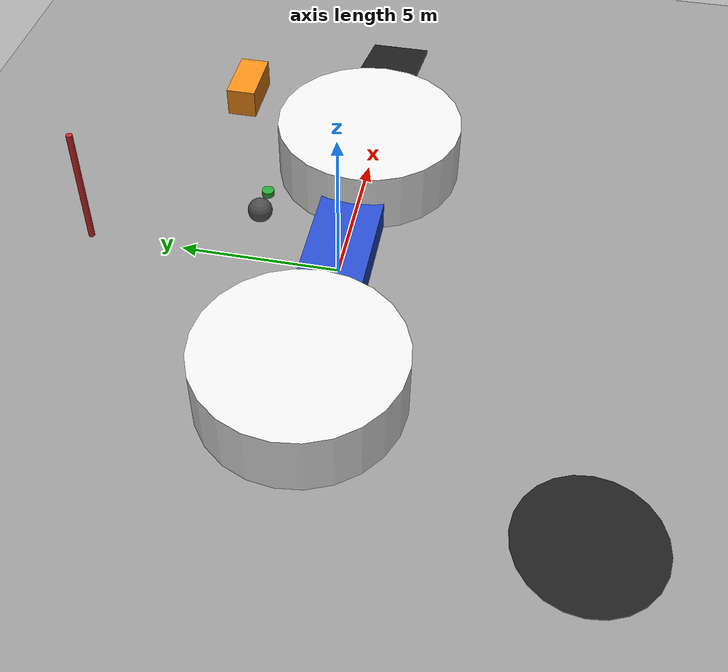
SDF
<?xml version="1.0" ?>
<sdf version="1.6">
  <world name="lunar_habitat">

    <!-- Physics -->
    <physics name="default_physics" default="0" type="ode">
      <gravity>0 0 -1.62</gravity> <!-- Moon gravity: 1.62 m/s² -->
      <ode>
        <solver>
          <type>quick</type>
          <iters>150</iters>
          <precon_iters>0</precon_iters>
          <sor>1.400000</sor>
          <use_dynamic_moi_rescaling>1</use_dynamic_moi_rescaling>
        </solver>
        <constraints>
          <cfm>0.00001</cfm>
          <erp>0.2</erp>
          <contact_max_correcting_vel>2000.000000</contact_max_correcting_vel>
          <contact_surface_layer>0.01000</contact_surface_layer>
        </constraints>
      </ode>
      <max_step_size>0.004</max_step_size>
      <real_time_factor>1.0</real_time_factor>
      <real_time_update_rate>250</real_time_update_rate>
    </physics>

    <!-- Scene -->
    <scene>
      <sky>
        <clouds>
          <speed>12</speed>
        </clouds>
      </sky>
      <ambient>0.4 0.4 0.4 1.0</ambient>
      <background>0.1 0.1 0.1 1.0</background>
      <shadows>false</shadows>
    </scene>

    <!-- Sun -->
    <light type="directional" name="sun">
      <cast_shadows>true</cast_shadows>
      <pose>0 0 10 0 0 0</pose>
      <diffuse>0.8 0.8 0.8 1</diffuse>
      <specular>0.2 0.2 0.2 1</specular>
      <attenuation>
        <range>1000</range>
        <constant>0.9</constant>
        <linear>0.01</linear>
        <quadratic>0.001</quadratic>
      </attenuation>
      <direction>-0.5 0.1 -0.9</direction>
    </light>

    <!-- Ground Plane (Lunar Surface) -->
    <model name="lunar_surface">
      <static>true</static>
      <link name="link">
        <collision name="collision">
          <geometry>
            <plane>
              <normal>0 0 1</normal>
              <size>100 100</size>
            </plane>
          </geometry>
          <surface>
            <contact>
              <collide_bitmask>65535</collide_bitmask>
              <ode>
                <mu>0.1</mu>
                <mu2>0.1</mu2>
              </ode>
            </contact>
            <friction>
              <ode>
                <mu>0.1</mu>
                <mu2>0.1</mu2>
              </ode>
            </friction>
          </surface>
        </collision>
        <visual name="visual">
          <cast_shadows>false</cast_shadows>
          <geometry>
            <plane>
              <normal>0 0 1</normal>
              <size>100 100</size>
            </plane>
          </geometry>
          <material>
            <script>
              <uri>file://media/materials/scripts/gazebo.material</uri>
              <name>Gazebo/Grey</name>
            </script>
          </material>
        </visual>
      </link>
    </model>

    <!-- Habitat Module 1 -->
    <model name="habitat_module_1">
      <static>true</static>
      <pose>5 0 1 0 0 0</pose>
      <link name="link">
        <collision name="collision">
          <geometry>
            <cylinder>
              <radius>3</radius>
              <length>2</length>
            </cylinder>
          </geometry>
        </collision>
        <visual name="visual">
          <geometry>
            <cylinder>
              <radius>3</radius>
              <length>2</length>
            </cylinder>
          </geometry>
          <material>
            <script>
              <uri>file://media/materials/scripts/gazebo.material</uri>
              <name>Gazebo/White</name>
            </script>
          </material>
        </visual>
      </link>
    </model>

    <!-- Habitat Module 2 -->
    <model name="habitat_module_2">
      <static>true</static>
      <pose>-5 0 1 0 0 0</pose>
      <link name="link">
        <collision name="collision">
          <geometry>
            <cylinder>
              <radius>3</radius>
              <length>2</length>
            </cylinder>
          </geometry>
        </collision>
        <visual name="visual">
          <geometry>
            <cylinder>
              <radius>3</radius>
              <length>2</length>
            </cylinder>
          </geometry>
          <material>
            <script>
              <uri>file://media/materials/scripts/gazebo.material</uri>
              <name>Gazebo/White</name>
            </script>
          </material>
        </visual>
      </link>
    </model>

    <!-- Connecting Corridor -->
    <model name="corridor">
      <static>true</static>
      <pose>0 0 0.5 0 0 0</pose>
      <link name="link">
        <collision name="collision">
          <geometry>
            <box>
              <size>8 2 1</size>
            </box>
          </geometry>
        </collision>
        <visual name="visual">
          <geometry>
            <box>
              <size>8 2 1</size>
            </box>
          </geometry>
          <material>
            <script>
              <uri>file://media/materials/scripts/gazebo.material</uri>
              <name>Gazebo/Blue</name>
            </script>
          </material>
        </visual>
      </link>
    </model>

    <!-- Obstacles - Rocks -->
    <model name="rock_1">
      <static>true</static>
      <pose>2 3 0.2 0 0 0</pose>
      <link name="link">
        <collision name="collision">
          <geometry>
            <sphere>
              <radius>0.4</radius>
            </sphere>
          </geometry>
        </collision>
        <visual name="visual">
          <geometry>
            <sphere>
              <radius>0.4</radius>
            </sphere>
          </geometry>
          <material>
            <script>
              <uri>file://media/materials/scripts/gazebo.material</uri>
              <name>Gazebo/DarkGrey</name>
            </script>
          </material>
        </visual>
      </link>
    </model>

    <model name="rock_2">
      <static>true</static>
      <pose>-3 -2 0.3 0 0 0</pose>
      <link name="link">
        <collision name="collision">
          <geometry>
            <box>
              <size>0.8 0.6 0.6</size>
            </box>
          </geometry>
        </collision>
        <visual name="visual">
          <geometry>
            <box>
              <size>0.8 0.6 0.6</size>
            </box>
          </geometry>
          <material>
            <script>
              <uri>file://media/materials/scripts/gazebo.material</uri>
              <name>Gazebo/DarkGrey</name>
            </script>
          </material>
        </visual>
      </link>
    </model>

    <!-- Equipment Storage -->
    <model name="storage_container">
      <static>true</static>
      <pose>8 5 0.5 0 0 0</pose>
      <link name="link">
        <collision name="collision">
          <geometry>
            <box>
              <size>2 1 1</size>
            </box>
          </geometry>
        </collision>
        <visual name="visual">
          <geometry>
            <box>
              <size>2 1 1</size>
            </box>
          </geometry>
          <material>
            <script>
              <uri>file://media/materials/scripts/gazebo.material</uri>
              <name>Gazebo/Orange</name>
            </script>
          </material>
        </visual>
      </link>
    </model>

    <!-- Solar Panels -->
    <model name="solar_panel_1">
      <static>true</static>
      <pose>10 0 1 0 0.3 0</pose>
      <link name="link">
        <collision name="collision">
          <geometry>
            <box>
              <size>3 2 0.1</size>
            </box>
          </geometry>
        </collision>
        <visual name="visual">
          <geometry>
            <box>
              <size>3 2 0.1</size>
            </box>
          </geometry>
          <material>
            <script>
              <uri>file://media/materials/scripts/gazebo.material</uri>
              <name>Gazebo/Black</name>
            </script>
          </material>
        </visual>
      </link>
    </model>

    <!-- Communication Antenna -->
    <model name="antenna">
      <static>true</static>
      <pose>0 8 2 0 0 0</pose>
      <link name="link">
        <collision name="collision">
          <geometry>
            <cylinder>
              <radius>0.1</radius>
              <length>4</length>
            </cylinder>
          </geometry>
        </collision>
        <visual name="visual">
          <geometry>
            <cylinder>
              <radius>0.1</radius>
              <length>4</length>
            </cylinder>
          </geometry>
          <material>
            <script>
              <uri>file://media/materials/scripts/gazebo.material</uri>
              <name>Gazebo/Red</name>
            </script>
          </material>
        </visual>
      </link>
    </model>

    <!-- Environmental Hazards -->
    <model name="crater_1">
      <static>true</static>
      <pose>-8 -8 -0.5 0 0 0</pose>
      <link name="link">
        <collision name="collision">
          <geometry>
            <cylinder>
              <radius>2</radius>
              <length>1</length>
            </cylinder>
          </geometry>
        </collision>
        <visual name="visual">
          <geometry>
            <cylinder>
              <radius>2</radius>
              <length>1</length>
            </cylinder>
          </geometry>
          <material>
            <script>
              <uri>file://media/materials/scripts/gazebo.material</uri>
              <name>Gazebo/Black</name>
            </script>
          </material>
        </visual>
      </link>
    </model>

    <!-- Waypoint Markers -->
    <model name="waypoint_1">
      <static>true</static>
      <pose>3 3 0.1 0 0 0</pose>
      <link name="link">
        <visual name="visual">
          <geometry>
            <cylinder>
              <radius>0.2</radius>
              <length>0.2</length>
            </cylinder>
          </geometry>
          <material>
            <script>
              <uri>file://media/materials/scripts/gazebo.material</uri>
              <name>Gazebo/Green</name>
            </script>
          </material>
        </visual>
      </link>
    </model>

    <model name="waypoint_2">
      <static>true</static>
      <pose>-3 3 0.1 0 0 0</pose>
      <link name="link">
        <visual name="visual">
          <geometry>
            <cylinder>
              <radius>0.2</radius>
              <length>0.2</length>
            </cylinder>
          </geometry>
          <material>
            <script>
              <uri>file://media/materials/scripts/gazebo.material</uri>
              <name>Gazebo/Green</name>
            </script>
          </material>
        </visual>
      </link>
    </model>

    <!-- Plugin for world state -->
    <plugin name="gazebo_ros_state" filename="libgazebo_ros_state.so">
      <ros>
        <namespace>/gazebo</namespace>
      </ros>
      <update_rate>1.0</update_rate>
    </plugin>

  </world>
</sdf>
